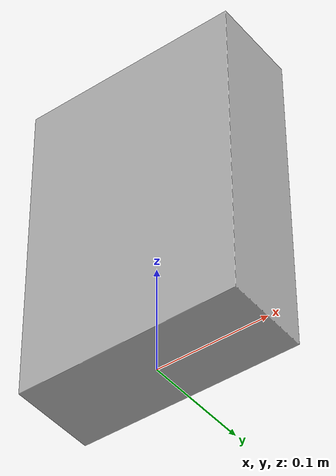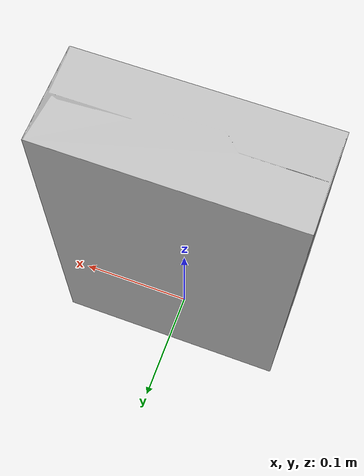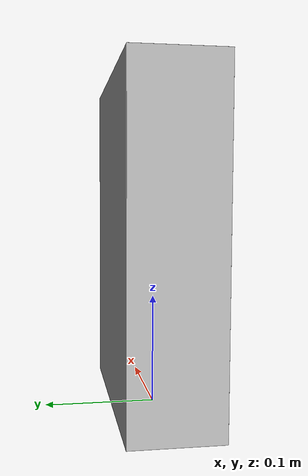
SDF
<?xml version="1.0" ?>
<sdf version="1.6" xmlns:drake="drake.mit.edu">
  <model name="cereal_box">
    <link name="link_cereal_box">
      <inertial>
        <pose frame="">0.0000e+00 0.0000e+00 1.7200e-01 0.0000e+00 0.0000e+00 0.0000e+00</pose>
        <mass>0.719</mass>
        <inertia>
          <ixx>0.008</ixx>
          <ixy>0</ixy>
          <ixz>0</ixz>
          <iyy>0.011</iyy>
          <iyz>0</iyz>
          <izz>0.004</izz>
        </inertia>
      </inertial>
      <visual name="link_cereal_box">
        <pose frame="">0.0000e+00 0.0000e+00 0.0000e+00 0.0000e+00 0.0000e+00 0.0000e+00</pose>
        <geometry>
          <mesh>
            <uri>meshes/link_cereal_box.obj</uri>
            <scale>1.0000e+00 1.0000e+00 1.0000e+00</scale>
          </mesh>
        </geometry>
        <material>
          <drake:diffuse_map>meshes/link_cereal_box_Bake1_pbr_diffuse.png</drake:diffuse_map>
          <drake:specular_map>meshes/link_cereal_box_Bake1_pbr_specular.png</drake:specular_map>
          <drake:roughness_map>meshes/link_cereal_box_Bake1_pbr_roughness.png</drake:roughness_map>
        </material>
      </visual>
      <collision name="cereal_box_hull_1">
        <pose frame="">0.0000e+00 0.0000e+00 0.0000e+00 0.0000e+00 0.0000e+00 0.0000e+00</pose>
        <geometry>
          <mesh>
            <uri>meshes/cereal_box_hull_1.obj</uri>
            <scale>1.0000e+00 1.0000e+00 1.0000e+00</scale>
            <drake:declare_convex/>
          </mesh>
        </geometry>
      </collision>
    </link>
  </model>
</sdf>
